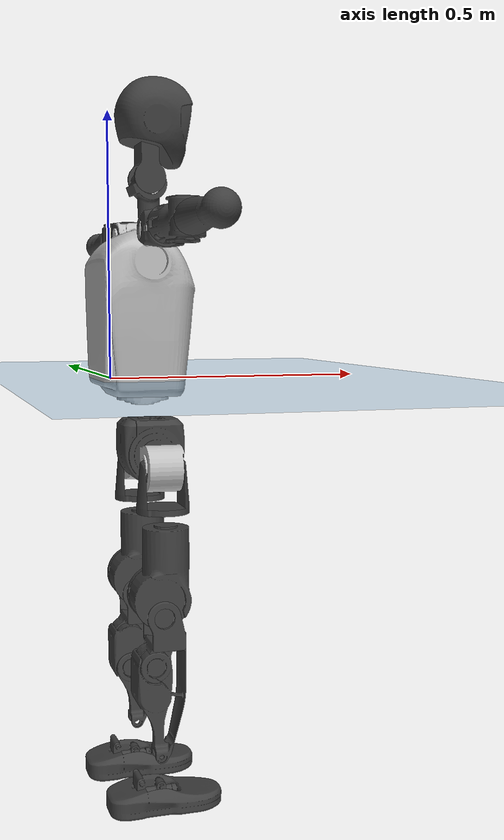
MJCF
<mujoco model="T1">
  <compiler angle="radian" assetdir="assets" balanceinertia="true" inertiafromgeom="false"/>

  <option timestep="0.005" density="1.2" viscosity="2e-05"/>

  <size nkey="1"/>

  <visual>
    <quality shadowsize="8192"/>
    <map shadowclip="0.5"/>
  </visual>

  <default>
    <default class="/">
      <joint armature="0.01" damping="0.01" frictionloss="0.1"/>
      <geom contype="0" conaffinity="0" group="1" solref="-1000 -80"/>
      <site size="0.01 0.005 0.005" group="5"/>
      <general forcelimited="true" biastype="affine" gainprm="25" biasprm="0 -25 -0.6"/>
      <default class="t1">
        <geom rgba="0.25 0.25 0.25 1"/>
        <default class="visual">
          <geom type="mesh" group="2"/>
        </default>
        <default class="collision">
          <geom group="3"/>
        </default>
        <default class="foot">
          <geom size="0.1115 0.05 0.015" type="box" condim="6" group="4" priority="1" solimp="0.015 1 0.015"/>
        </default>
        <default class="reward_collision_sphere">
          <geom group="5" rgba="1 0 0 1"/>
        </default>
      </default>
    </default>
  </default>

  <asset>
    <texture type="skybox" colorspace="auto" name="//unnamed_texture_0" builtin="gradient" rgb1="0.95 0.95 0.95" rgb2="0.95 0.95 0.95" width="100" height="600"/>
    <texture type="2d" colorspace="auto" name="texplane" builtin="checker" rgb1="0.345 0.575 0.748" rgb2="0.345 0.575 0.748" markrgb="1 1 1" width="512" height="512"/>
    <material name="MatPlane" class="/" texture="texplane" texuniform="true" texrepeat="2 2" specular="0.9"/>
    <mesh name="Trunk" class="/" file="Trunk.stl"/>
    <mesh name="H1" class="/" file="H1.stl"/>
    <mesh name="H2" class="/" file="H2.stl"/>
    <mesh name="AL1" class="/" file="AL1.stl"/>
    <mesh name="AL2" class="/" file="AL2.stl"/>
    <mesh name="AL3" class="/" file="AL3.stl"/>
    <mesh name="left_hand_link" class="/" file="left_hand_link.stl"/>
    <mesh name="AR1" class="/" file="AR1.stl"/>
    <mesh name="AR2" class="/" file="AR2.stl"/>
    <mesh name="AR3" class="/" file="AR3.stl"/>
    <mesh name="right_hand_link" class="/" file="right_hand_link.stl"/>
    <mesh name="Waist" class="/" file="Waist.stl"/>
    <mesh name="Hip_Pitch_Left" class="/" file="Hip_Pitch_Left.stl"/>
    <mesh name="Hip_Roll_Left" class="/" file="Hip_Roll_Left.stl"/>
    <mesh name="Hip_Yaw_Left" class="/" file="Hip_Yaw_Left.stl"/>
    <mesh name="Shank_Left" class="/" file="Shank_Left.stl"/>
    <mesh name="Ankle_Cross_Left" class="/" file="Ankle_Cross_Left.stl"/>
    <mesh name="left_foot_link" class="/" file="left_foot_link.stl"/>
    <mesh name="Hip_Pitch_Right" class="/" file="Hip_Pitch_Right.stl"/>
    <mesh name="Hip_Roll_Right" class="/" file="Hip_Roll_Right.stl"/>
    <mesh name="Hip_Yaw_Right" class="/" file="Hip_Yaw_Right.stl"/>
    <mesh name="Shank_Right" class="/" file="Shank_Right.stl"/>
    <mesh name="Ankle_Cross_Right" class="/" file="Ankle_Cross_Right.stl"/>
    <mesh name="right_foot_link" class="/" file="right_foot_link.stl"/>
  </asset>

  <worldbody>
    <geom name="floor" class="/" size="100 100 0.125" type="plane" group="0" material="MatPlane"/>
    <light name="toplight_shadow" class="/" pos="0 0 5" dir="0.0990148 0.0990148 -0.990148" type="directional" ambient="0.04 0.04 0.04" diffuse="0.55 0.55 0.55" specular="0.12 0.12 0.12"/>
    <light name="toplight_fill" class="/" pos="0 0 5" dir="0.0990148 0.0990148 -0.990148" type="directional" castshadow="false" ambient="0.04 0.04 0.04" diffuse="0.3 0.3 0.3" specular="0.08 0.08 0.08"/>
    <body name="trunk" childclass="t1" pos="0.000349345 -0.00100522 0.00127631" quat="1 -1.04384e-05 -0.00011595 -0.000553047">
      <inertial pos="0.0673485 -0.00214527 0.129682" quat="0.999959 0.00309675 -0.00733511 0.00435756" mass="15.573" diaginertia="0.221348 0.0327766 0.150431"/>
      <joint name="//unnamed_joint_0" type="free" armature="0" damping="0" frictionloss="0"/>
      <geom name="//unnamed_geom_1" class="visual" rgba="0.76 0.76 0.76 1" mesh="Trunk"/>
      <geom name="//unnamed_geom_2" class="collision" size="0.0823849 0.109846 0.16477" pos="0.0730545 0 0.147912" type="box"/>
      <geom name="//unnamed_geom_3" class="reward_collision_sphere" size="0.126323" pos="0.0730545 0 0.12326"/>
      <geom name="//unnamed_geom_4" class="reward_collision_sphere" size="0.016477" pos="0.0730545 0.071844 0"/>
      <geom name="//unnamed_geom_5" class="reward_collision_sphere" size="0.016477" pos="0.0730545 -0.071844 0"/>
      <geom name="//unnamed_geom_6" class="reward_collision_sphere" size="0.016477" pos="0.0730545 0.0904389 0.221867"/>
      <geom name="//unnamed_geom_7" class="reward_collision_sphere" size="0.016477" pos="0.0730545 -0.0904389 0.221867"/>
      <site name="imu" pos="-0.00419146 0.000386325 0.00354131" size="0.0109846"/>
      <camera name="track" pos="0 -1.69045 0" quat="0.707107 0.707107 0 0" mode="trackcom"/>
      <camera name="ego_camera" pos="0.148544 0 0.517691" quat="-0.5 -0.5 0.5 0.5"/>
      <body name="H1" pos="0.0775612 0.00024968 0.303304" quat="1 0.000576403 2.26361e-05 0.000320272">
        <inertial pos="-0.00179342 -0.00342249 0.0706897" quat="0.76492 -0.0142289 0.00178379 0.643966" mass="0.59933" diaginertia="0.000640382 9.876e-05 0.000430139"/>
        <joint name="AAHead_yaw" pos="0 0 0" axis="0.0057362 -0.0116028 0.999916" range="-1.5853 1.58791" armature="0.00891548" damping="0.012142" frictionloss="0.0923481"/>
        <geom name="//unnamed_geom_8" class="visual" mesh="H1"/>
        <body name="H2" pos="-0.00229104 0.00559819 0.0735728" quat="0.999999 -0.000774113 -0.000510931 -0.000410829">
          <inertial pos="0.0073309 0.00312094 0.12628" quat="0.989493 0.105613 -0.0669494 -0.0725728" mass="0.864515" diaginertia="0.00566385 0.000893605 0.00492528"/>
          <joint name="Head_pitch" pos="0 0 0" axis="0.00979549 -0.999942 0.00442647" range="-1.19268 0.305956" armature="0.0111547" damping="0.0235345" frictionloss="0.12159"/>
          <geom name="//unnamed_geom_9" class="visual" mesh="H2"/>
          <geom name="//unnamed_geom_10" class="collision" size="0.0878772" pos="0.0121757 0 0.135586"/>
          <geom name="//unnamed_geom_11" class="reward_collision_sphere" size="0.0988618" pos="0.0243515 0 0.12326"/>
        </body>
      </body>
      <body name="AL1" pos="0.0742501 0.0929908 0.273604" quat="0.999998 0.000943945 -0.000468488 -0.00165005">
        <inertial pos="-0.000938305 0.0390697 -0.00152308" quat="0.50465 0.495162 -0.504684 0.495416" mass="0.694635" diaginertia="0.00360302 0.000581589 0.00084879"/>
        <joint name="Left_Shoulder_Pitch" pos="0 0 0" axis="0.00184816 0.999993 -0.00328979" range="-3.31754 1.13657" armature="0.0108145" damping="0.0260169" frictionloss="0.114504"/>
        <geom name="//unnamed_geom_12" class="visual" rgba="0.76 0.76 0.76 1" mesh="AL1"/>
        <body name="AL2" pos="0.00363855 0.0424953 0.00177823" quat="1 -0.000229291 -4.90302e-05 0.00017206">
          <inertial pos="0.00328396 0.0285416 -0.00111469" quat="0.482263 0.50658 -0.496436 0.51415" mass="0.208057" diaginertia="0.00107963 0.000153978 0.000499184"/>
          <joint name="Left_Shoulder_Roll" pos="0 0 0" axis="-0.999902 -0.00631451 0.0124686" stiffness="0.0249911" range="-1.55159 1.7608" armature="0.00864355" damping="0.00735466" frictionloss="0.109813"/>
          <geom name="//unnamed_geom_13" class="visual" mesh="AL2"/>
          <body name="AL3" pos="0.00283365 0.051863 0.000823401" quat="0.999999 -0.00113575 0.000481214 -0.00023904">
            <inertial pos="-0.00288771 0.0758719 0.00150841" quat="0.705362 0.708843 0.0016591 0.00197622" mass="1.43666" diaginertia="0.0341123 0.00564141 0.00182831"/>
            <joint name="Left_Elbow_Pitch" pos="0 0 0" axis="-0.00484751 -0.999972 -0.00563911" range="-2.18313 2.23213" armature="0.00784376" damping="0" frictionloss="0.107733"/>
            <geom name="//unnamed_geom_14" class="visual" mesh="AL3"/>
            <geom name="//unnamed_geom_15" class="collision" size="0.0329539 0.0823849" pos="0 0.0422612 0" quat="0.707105 0.707108 0 0" type="cylinder"/>
            <geom name="//unnamed_geom_16" class="reward_collision_sphere" size="0.0395447"/>
            <body name="left_hand_link" pos="-0.00210444 0.127286 0.000435369" quat="0.999998 0.00103275 0.00107139 -0.00146516">
              <inertial pos="0.00436948 0.0944678 0.00154423" quat="0.709999 0.704102 0.00405925 0.0111642" mass="0.438061" diaginertia="0.0226845 0.00359219 0.000590215"/>
              <joint name="Left_Elbow_Yaw" pos="0 0 0" axis="-0.00575546 0.000327381 0.999983" stiffness="0.00315053" range="-2.45581 0.0941616" armature="0.00967928" damping="0.017913" frictionloss="0.108919"/>
              <geom name="//unnamed_geom_17" class="visual" mesh="left_hand_link"/>
              <geom name="//unnamed_geom_18" class="collision" size="0.0329539 0.0961157" pos="0 0.109879 0" quat="0.707105 0.707108 0 0" type="cylinder"/>
              <geom name="//unnamed_geom_19" class="reward_collision_sphere" size="0.0549232"/>
              <geom name="//unnamed_geom_20" class="reward_collision_sphere" size="0.0384463" pos="0 0.0929746 0"/>
              <geom name="//unnamed_geom_21" class="reward_collision_sphere" size="0.0384463" pos="0 0.181723 0"/>
            </body>
          </body>
        </body>
      </body>
      <body name="AR1" pos="0.0714848 -0.0859598 0.273183" quat="0.999999 0.00096947 0.000461867 -0.000329016">
        <inertial pos="-0.000701429 -0.0326013 -0.0022729" quat="0.504254 0.495007 -0.504557 0.496103" mass="0.743851" diaginertia="0.00370874 0.000566964 0.000876381"/>
        <joint name="Right_Shoulder_Pitch" pos="0 0 0" axis="-0.00953632 -0.999933 0.00658609" stiffness="0.0246038" range="-1.23127 3.29184" armature="0.00954391" damping="0" frictionloss="0.102962"/>
        <geom name="//unnamed_geom_22" class="visual" rgba="0.76 0.76 0.76 1" mesh="AR1"/>
        <body name="AR2" pos="-0.00475399 -0.0392898 -0.000215994" quat="0.999999 -0.00120164 0.000248098 -0.00100006">
          <inertial pos="0.00489503 -0.0309726 -0.00153295" quat="0.510987 0.494264 -0.508448 0.485876" mass="0.221262" diaginertia="0.00107762 0.000143147 0.000487554"/>
          <joint name="Right_Shoulder_Roll" pos="0 0 0" axis="-0.999958 0.00744106 -0.00541548" range="-1.69701 1.61684" armature="0.0106955" damping="0.0134075" frictionloss="0.0798707"/>
          <geom name="//unnamed_geom_23" class="visual" mesh="AR2"/>
          <body name="AR3" pos="3.52753e-05 -0.0490214 0.0055551" quat="1 1.11542e-07 9.39804e-06 2.87506e-05">
            <inertial pos="0.000840425 -0.0688239 -0.00144259" quat="0.7061 0.707994 0.00210504 -0.0127473" mass="1.33542" diaginertia="0.0339375 0.00529324 0.00169012"/>
            <joint name="Right_Elbow_Pitch" pos="0 0 0" axis="0.0103264 0.999899 0.00976959" range="-2.21297 2.26198" armature="0.0129458" damping="0.0165591" frictionloss="0.108674"/>
            <geom name="//unnamed_geom_24" class="visual" mesh="AR3"/>
            <geom name="//unnamed_geom_25" class="collision" size="0.0329539 0.0823849" pos="0 -0.0422612 0" quat="0.707105 0.707108 0 0" type="cylinder"/>
            <geom name="//unnamed_geom_26" class="reward_collision_sphere" size="0.0395447"/>
            <body name="right_hand_link" pos="-0.00159119 -0.125315 -0.00201891" quat="1 -0.000523419 -0.000734808 0.000289299">
              <inertial pos="0.00136836 -0.0939815 -0.00268155" quat="0.705468 0.708741 0.000764308 0.000488918" mass="0.414731" diaginertia="0.0210498 0.00351303 0.000599816"/>
              <joint name="Right_Elbow_Yaw" pos="0 0 0" axis="0.00212837 -0.000299454 0.999998" stiffness="0.00601769" range="-0.0212051 2.43626" armature="0.00932749" damping="0.0304811" frictionloss="0.104214"/>
              <geom name="//unnamed_geom_27" class="visual" mesh="right_hand_link"/>
              <geom name="//unnamed_geom_28" class="collision" size="0.0329539 0.0961157" pos="0 -0.109879 0" quat="0.707105 0.707108 0 0" type="cylinder"/>
              <geom name="//unnamed_geom_29" class="reward_collision_sphere" size="0.0549232"/>
              <geom name="//unnamed_geom_30" class="reward_collision_sphere" size="0.0384463" pos="0 -0.0929746 0"/>
              <geom name="//unnamed_geom_31" class="reward_collision_sphere" size="0.0384463" pos="0 -0.181723 0"/>
            </body>
          </body>
        </body>
      </body>
      <body name="Waist" pos="0.076862 0.0013651 -0.146861" quat="1 -0.000148478 -0.000184837 -5.2494e-05">
        <inertial pos="0.00606519 -0.00281979 0.0116489" quat="0.985935 0.000260045 -0.167113 -0.00224682" mass="3.65999" diaginertia="0.0157411 0.00239267 0.0145404"/>
        <joint name="Waist" pos="0 0 0" axis="0.0149692 0.0010396 0.999887" range="-1.52295 1.63161" armature="0.0110805" damping="0.00848071" frictionloss="0.0955612"/>
        <geom name="//unnamed_geom_32" class="visual" mesh="Waist"/>
        <body name="Hip_Pitch_Left" pos="0.00155678 0.0878128 -0.00170344" quat="1 0.000491713 5.20802e-05 -4.72114e-07">
          <inertial pos="0.000244081 -0.00756046 -0.0238385" quat="0.975715 0.21903 0.00231733 -0.000154556" mass="1.39912" diaginertia="0.00486293 0.000611733 0.00369531"/>
          <joint name="Left_Hip_Pitch" pos="0 0 0" axis="-0.00850234 0.999602 0.0269137" stiffness="0.0184898" range="-1.8275 1.48472" armature="0.0114037" damping="0.0215877" frictionloss="0.1085"/>
          <geom name="//unnamed_geom_33" class="visual" rgba="0.76 0.76 0.76 1" mesh="Hip_Pitch_Left"/>
          <body name="Hip_Roll_Left" pos="-0.00184731 -0.00590325 -0.0271148" quat="0.999996 -7.4196e-05 -0.00127361 -0.00232608">
            <inertial pos="0.00319159 -0.000529629 -0.0639438" quat="0.704737 0.00304263 -0.0120368 0.70936" mass="0.523534" diaginertia="0.0047391 0.000700336 0.00154865"/>
            <joint name="Left_Hip_Roll" pos="0 0 0" axis="-0.999763 -0.00782889 0.0202929" range="-1.53545 0.202848" armature="0.0103572" damping="0" frictionloss="0.0961899"/>
            <geom name="//unnamed_geom_34" class="visual" mesh="Hip_Roll_Left"/>
            <geom name="//unnamed_geom_35" class="reward_collision_sphere" size="0.0604156"/>
            <body name="Hip_Yaw_Left" pos="0.00240726 0.00222003 -0.102937" quat="1 8.52216e-06 -3.37554e-06 -5.46438e-06">
              <inertial pos="-0.00772377 0.00252055 -0.109411" quat="0.692532 -0.0229925 -0.0157094 0.720849" mass="2.93023" diaginertia="0.0700599 0.0110376 0.0076627"/>
              <joint name="Left_Hip_Yaw" pos="0 0 0" axis="0.00613889 0.00432668 -0.999972" range="-0.986274 0.98422" armature="0.0110456" damping="0.014641" frictionloss="0.118631"/>
              <geom name="//unnamed_geom_36" class="visual" mesh="Hip_Yaw_Left"/>
              <geom name="//unnamed_geom_37" class="collision" size="0.0549232 0.0878772" type="cylinder"/>
              <body name="Shank_Left" pos="-0.0185398 0.00305759 -0.164069" quat="1 -7.86764e-06 -1.19662e-05 6.91479e-05">
                <inertial pos="-0.0088222 0.00187253 -0.154992" quat="0.997163 0.0091229 -0.0301983 0.068339" mass="2.31761" diaginertia="0.0935617 0.0149434 0.00553554"/>
                <joint name="Left_Knee_Pitch" pos="0 0 0" axis="0.000257843 1 -0.000150928" stiffness="0.00386914" range="0.0373446 2.31872" armature="0.0093778" damping="0.00698156" frictionloss="0.0960758"/>
                <geom name="//unnamed_geom_38" class="visual" mesh="Shank_Left"/>
                <geom name="//unnamed_geom_39" class="collision" size="0.0549232 0.0823849" pos="0 0 -0.147912" type="cylinder"/>
                <geom name="//unnamed_geom_40" class="reward_collision_sphere" size="0.0714002"/>
                <body name="Ankle_Cross_Left" pos="-0.00308082 -0.00104443 -0.343361" quat="0.999999 -0.000737102 0.00119323 0.000725881">
                  <inertial pos="-0.0057396 0.00493275 -0.0118765" quat="0.443927 0.555203 0.549829 0.438597" mass="0.096276" diaginertia="7.74584e-05 1.0658e-05 3.17847e-05"/>
                  <joint name="Left_Ankle_Pitch" pos="0 0 0" axis="0.00183722 0.999998 0.00122925" range="-0.833848 0.394181" armature="0.00973956" damping="0.00304196" frictionloss="0.118373"/>
                  <geom name="//unnamed_geom_41" class="visual" mesh="Ankle_Cross_Left"/>
                  <body name="left_foot_link" pos="0.00167872 0.00436257 -0.0162142" quat="1 0.000155598 0.000134541 -0.000180987">
                    <inertial pos="-0.00321797 -0.000907822 -0.0164074" quat="0.00717107 0.616098 0.00840034 0.787592" mass="0.897171" diaginertia="0.00677411 0.00102674 0.00588303"/>
                    <joint name="Left_Ankle_Roll" pos="0 0 0" axis="-1 -0.000125509 0.000758068" range="-0.438966 0.449843" armature="0.0127728" damping="0.000870753" frictionloss="0.111827"/>
                    <geom name="//unnamed_geom_42" class="visual" mesh="left_foot_link"/>
                    <geom name="left_foot" class="foot" size="0.0729443 0.0580284 0.0188881" pos="0.0121757 0 -0.0184889"/>
                    <geom name="//unnamed_geom_44" class="reward_collision_sphere" size="0.0571202" pos="0.0121757 0 -0.0184889"/>
                    <geom name="//unnamed_geom_45" class="reward_collision_sphere" size="0.0329539" pos="0.11567 -0.0194401 -0.0184889"/>
                    <geom name="//unnamed_geom_46" class="reward_collision_sphere" size="0.0329539" pos="-0.0852302 -0.0194401 -0.0184889"/>
                    <site name="left_foot" class="foot" pos="0.0121757 0 -0.0184889" size="0.0109846"/>
                  </body>
                </body>
              </body>
            </body>
          </body>
        </body>
        <body name="Hip_Pitch_Right" pos="0.00165361 -0.0931111 0.000379871" quat="0.999997 0.000938836 0.0015978 -0.001688">
          <inertial pos="-0.00184099 0.0122414 -0.0222729" quat="0.973126 -0.229742 0.0150233 -0.00423193" mass="1.41795" diaginertia="0.00506576 0.000668969 0.00362025"/>
          <joint name="Right_Hip_Pitch" pos="0 0 0" axis="0.0058153 -0.999963 0.00639884" range="-1.55117 1.77232" armature="0.0103275" damping="0.00606646" frictionloss="0.0856704"/>
          <geom name="//unnamed_geom_47" class="visual" rgba="0.76 0.76 0.76 1" mesh="Hip_Pitch_Right"/>
          <body name="Hip_Roll_Right" pos="0.00283436 -0.002658 -0.0267602" quat="1 -0.00019174 -0.000173822 -1.83003e-05">
            <inertial pos="0.00480372 -0.00505517 -0.0616642" quat="0.710717 -0.0106567 -0.00852748 0.703345" mass="0.504667" diaginertia="0.00455505 0.000655549 0.00146742"/>
            <joint name="Right_Hip_Roll" pos="0 0 0" axis="-0.999917 -0.0128513 -0.000423114" stiffness="0.0039995" range="-0.233505 1.57794" armature="0.0117802" damping="0.0121398" frictionloss="0.120952"/>
            <geom name="//unnamed_geom_48" class="visual" mesh="Hip_Roll_Right"/>
            <geom name="//unnamed_geom_49" class="reward_collision_sphere" size="0.0604156"/>
            <body name="Hip_Yaw_Right" pos="0.00246275 -0.000339111 -0.104852" quat="1 -4.44109e-05 -8.62024e-05 -3.43075e-05">
              <inertial pos="-0.00870383 0.000334379 -0.1074" quat="0.713567 -0.0304595 -0.0345207 0.699072" mass="2.99535" diaginertia="0.0675304 0.0111117 0.0072274"/>
              <joint name="Right_Hip_Yaw" pos="0 0 0" axis="-0.013854 0.00113801 -0.999903" range="-1.07055 1.04536" armature="0.0138748" damping="0.00251509" frictionloss="0.0891667"/>
              <geom name="//unnamed_geom_50" class="visual" mesh="Hip_Yaw_Right"/>
              <geom name="//unnamed_geom_51" class="collision" size="0.0549232 0.0878772" type="cylinder"/>
              <body name="Shank_Right" pos="-0.0137901 -0.00456962 -0.165042" quat="0.999999 0.000847268 0.000604427 0.00117515">
                <inertial pos="-0.00827083 -0.0013383 -0.155662" quat="0.999378 -0.00253966 -0.0235149 -0.0261672" mass="2.41663" diaginertia="0.093535 0.0147786 0.00518899"/>
                <joint name="Right_Knee_Pitch" pos="0 0 0" axis="0.00798224 -0.999936 0.00806463" range="-2.38631 0.0377794" armature="0.0098231" damping="0.00269911" frictionloss="0.099147"/>
                <geom name="//unnamed_geom_52" class="visual" mesh="Shank_Right"/>
                <geom name="//unnamed_geom_53" class="collision" size="0.0549232 0.0823849" pos="0 0 -0.147912" type="cylinder"/>
                <geom name="//unnamed_geom_54" class="reward_collision_sphere" size="0.0714002"/>
                <body name="Ankle_Cross_Right" pos="0.00139181 0.00207313 -0.342738" quat="0.999996 -0.00115404 -0.00241446 0.00106222">
                  <inertial pos="-0.00655837 -0.00156768 -0.0113685" quat="0.440103 0.552605 0.550778 0.444501" mass="0.0975825" diaginertia="7.98273e-05 1.10953e-05 3.30896e-05"/>
                  <joint name="Right_Ankle_Pitch" pos="0 0 0" axis="0.00590955 -0.999899 0.012905" range="-0.303893 0.891019" armature="0.0117595" damping="0.00211948" frictionloss="0.09757"/>
                  <geom name="//unnamed_geom_55" class="visual" mesh="Ankle_Cross_Right"/>
                  <body name="right_foot_link" pos="-0.000260989 0.00269191 -0.0159129" quat="0.999999 -0.000837878 0.000458306 -0.000396612">
                    <inertial pos="-0.00165305 0.0023924 -0.00911889" quat="-0.00131343 0.614531 0.00963416 0.788833" mass="0.887226" diaginertia="0.00739305 0.00103976 0.00629542"/>
                    <joint name="Right_Ankle_Roll" pos="0 0 0" axis="-0.999987 0.0040442 0.00296053" range="-0.555074 0.435132" armature="0.00963247" damping="0.00096209" frictionloss="0.114208"/>
                    <geom name="//unnamed_geom_56" class="visual" mesh="right_foot_link"/>
                    <geom name="right_foot" class="foot" size="0.0800832 0.0557462 0.0176937" pos="0.0121757 0 -0.0184889"/>
                    <geom name="//unnamed_geom_58" class="reward_collision_sphere" size="0.0439386"/>
                    <geom name="//unnamed_geom_59" class="reward_collision_sphere" size="0.0329539" pos="0.0121757 0 -0.0184889"/>
                    <geom name="//unnamed_geom_60" class="reward_collision_sphere" size="0.0329539" pos="0.11567 0.0194401 -0.0184889"/>
                    <geom name="//unnamed_geom_61" class="reward_collision_sphere" size="0.0329539" pos="-0.0852302 0.0194401 -0.0184889"/>
                    <site name="right_foot" class="foot" pos="0.0121757 0 -0.0184889" size="0.0109846"/>
                  </body>
                </body>
              </body>
            </body>
          </body>
        </body>
      </body>
    </body>
  </worldbody>

  <contact>
    <pair class="/" geom1="floor" geom2="left_foot" name="//unnamed_contact_0"/>
    <pair class="/" geom1="floor" geom2="right_foot" name="//unnamed_contact_1"/>
  </contact>

  <actuator>
    <general name="AAHead_yaw" class="/" joint="AAHead_yaw" forcerange="-7.60918 7.60918" gainprm="26.8665" biasprm="0 -26.8665 -0.604032"/>
    <general name="Head_pitch" class="/" joint="Head_pitch" forcerange="-7.52077 7.52077" gainprm="26.8665" biasprm="0 -26.8665 -0.604032"/>
    <general name="Left_Shoulder_Pitch" class="/" joint="Left_Shoulder_Pitch" forcerange="-17.5608 17.5608" gainprm="26.8665" biasprm="0 -26.8665 -0.604032"/>
    <general name="Left_Shoulder_Roll" class="/" joint="Left_Shoulder_Roll" forcerange="-17.7312 17.7312" gainprm="26.8665" biasprm="0 -26.8665 -0.604032"/>
    <general name="Left_Elbow_Pitch" class="/" joint="Left_Elbow_Pitch" forcerange="-18.8916 18.8916" gainprm="26.8665" biasprm="0 -26.8665 -0.604032"/>
    <general name="Left_Elbow_Yaw" class="/" joint="Left_Elbow_Yaw" forcerange="-19.9825 19.9825" gainprm="26.8665" biasprm="0 -26.8665 -0.604032"/>
    <general name="Right_Shoulder_Pitch" class="/" joint="Right_Shoulder_Pitch" forcerange="-19.6747 19.6747" gainprm="26.8665" biasprm="0 -26.8665 -0.604032"/>
    <general name="Right_Shoulder_Roll" class="/" joint="Right_Shoulder_Roll" forcerange="-18.2075 18.2075" gainprm="26.8665" biasprm="0 -26.8665 -0.604032"/>
    <general name="Right_Elbow_Pitch" class="/" joint="Right_Elbow_Pitch" forcerange="-21.9658 21.9658" gainprm="26.8665" biasprm="0 -26.8665 -0.604032"/>
    <general name="Right_Elbow_Yaw" class="/" joint="Right_Elbow_Yaw" forcerange="-17.6538 17.6538" gainprm="26.8665" biasprm="0 -26.8665 -0.604032"/>
    <general name="Waist" class="/" joint="Waist" forcerange="-36.5285 36.5285" gainprm="26.8665" biasprm="0 -26.8665 -0.604032"/>
    <general name="Left_Hip_Pitch" class="/" joint="Left_Hip_Pitch" forcerange="-45.4057 45.4057" gainprm="26.8665" biasprm="0 -26.8665 -0.604032"/>
    <general name="Left_Hip_Roll" class="/" joint="Left_Hip_Roll" forcerange="-32.8281 32.8281" gainprm="26.8665" biasprm="0 -26.8665 -0.604032"/>
    <general name="Left_Hip_Yaw" class="/" joint="Left_Hip_Yaw" forcerange="-29.9353 29.9353" gainprm="26.8665" biasprm="0 -26.8665 -0.604032"/>
    <general name="Left_Knee_Pitch" class="/" joint="Left_Knee_Pitch" forcerange="-70.7552 70.7552" gainprm="26.8665" biasprm="0 -26.8665 -0.604032"/>
    <general name="Left_Ankle_Pitch" class="/" joint="Left_Ankle_Pitch" forcerange="-17.9062 17.9062" gainprm="26.8665" biasprm="0 -26.8665 -0.604032"/>
    <general name="Left_Ankle_Roll" class="/" joint="Left_Ankle_Roll" forcerange="-19.9893 19.9893" gainprm="26.8665" biasprm="0 -26.8665 -0.604032"/>
    <general name="Right_Hip_Pitch" class="/" joint="Right_Hip_Pitch" forcerange="-48.1246 48.1246" gainprm="26.8665" biasprm="0 -26.8665 -0.604032"/>
    <general name="Right_Hip_Roll" class="/" joint="Right_Hip_Roll" forcerange="-35.4936 35.4936" gainprm="26.8665" biasprm="0 -26.8665 -0.604032"/>
    <general name="Right_Hip_Yaw" class="/" joint="Right_Hip_Yaw" forcerange="-28.3384 28.3384" gainprm="26.8665" biasprm="0 -26.8665 -0.604032"/>
    <general name="Right_Knee_Pitch" class="/" joint="Right_Knee_Pitch" forcerange="-71.2932 71.2932" gainprm="26.8665" biasprm="0 -26.8665 -0.604032"/>
    <general name="Right_Ankle_Pitch" class="/" joint="Right_Ankle_Pitch" forcerange="-22.6322 22.6322" gainprm="26.8665" biasprm="0 -26.8665 -0.604032"/>
    <general name="Right_Ankle_Roll" class="/" joint="Right_Ankle_Roll" forcerange="-17.0255 17.0255" gainprm="26.8665" biasprm="0 -26.8665 -0.604032"/>
  </actuator>

  <sensor>
    <gyro site="imu" name="imu_angular_velocity"/>
    <velocimeter site="imu" name="imu_linear_velocity"/>
    <framelinvel objtype="site" objname="left_foot" name="left_foot_global_linear_velocity"/>
    <framelinvel objtype="site" objname="right_foot" name="right_foot_global_linear_velocity"/>
  </sensor>

  <keyframe>
    <key name="home" qpos="0 0 0.6385 1 0 0 0 0 0 0 1.4 0 -0.4 0 -1.4 0 0.4 0 -0.4 0 0 0.8 -0.4 0 0.4 0 0 -0.8 0.4 0"/>
  </keyframe>
</mujoco>
